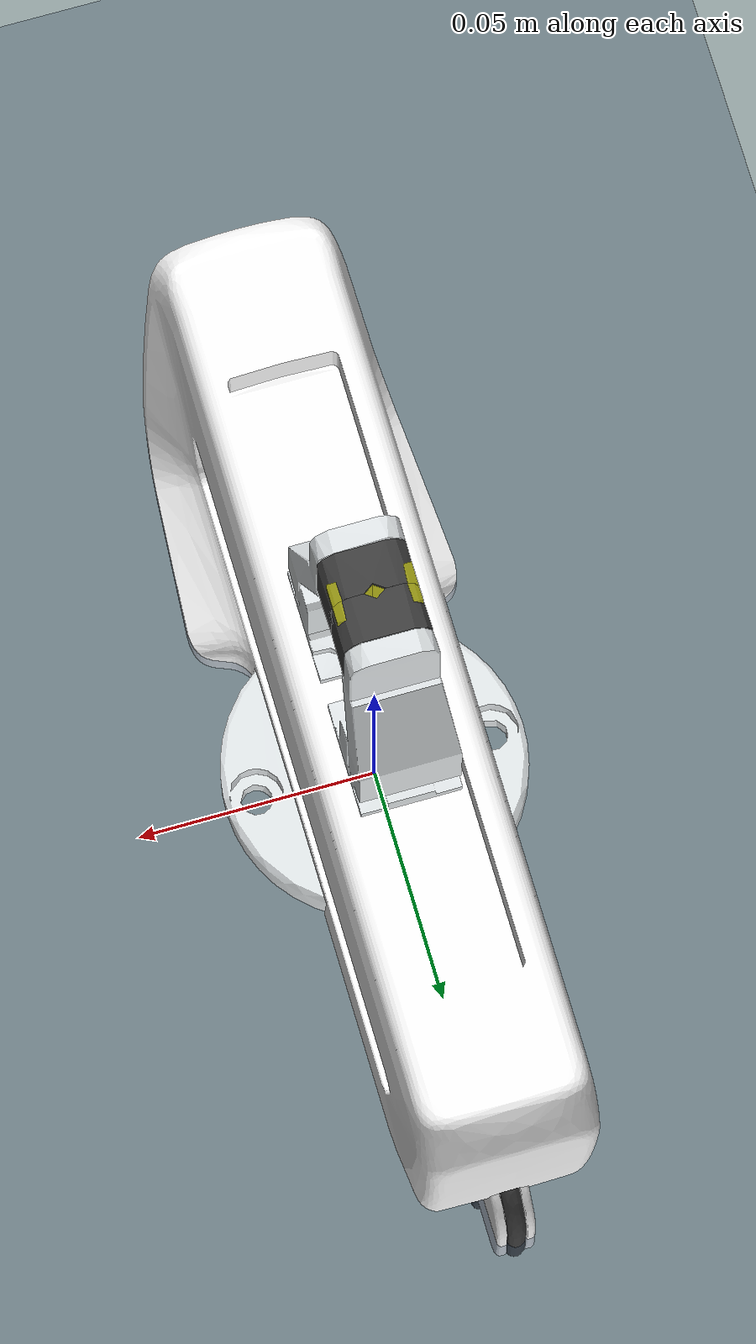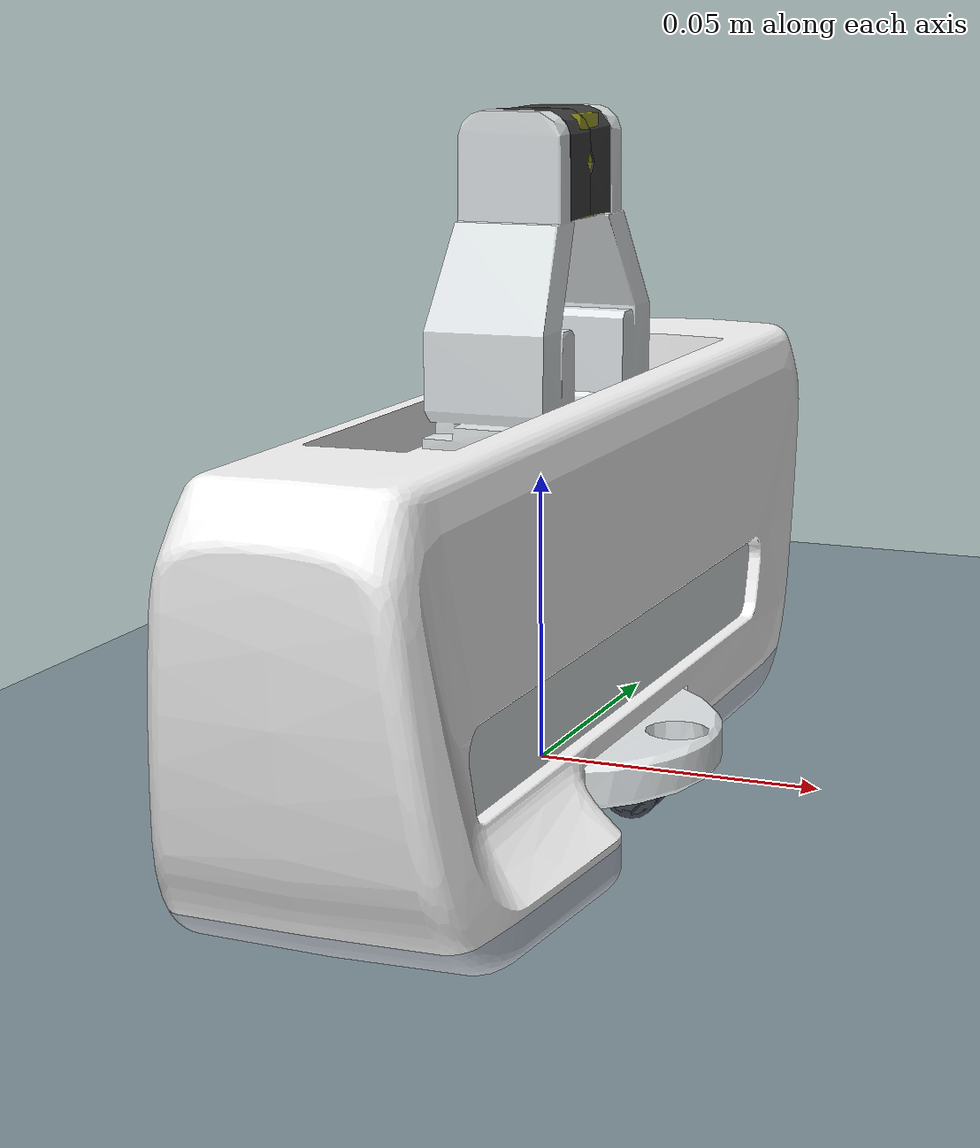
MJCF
<mujoco model="panda hand">
  <compiler angle="radian" meshdir="assets" autolimits="true"/>

  <option integrator="implicitfast"/>

  <visual>
    <headlight diffuse="0.6 0.6 0.6" ambient="0.3 0.3 0.3" specular="0 0 0" />
    <rgba haze="0.15 0.25 0.35 1" />
    <global azimuth="120" elevation="-20" offwidth="1920" offheight="1080" />
  </visual>

  <default>
    <default class="panda">
      <material specular="0.5" shininess="0.25"/>
      <joint armature="0.1" damping="1" axis="0 0 1" range="-2.8973 2.8973"/>
      <general dyntype="none" biastype="affine" ctrlrange="-2.8973 2.8973" forcerange="-87 87"/>
      <default class="finger">
        <joint axis="0 1 0" type="slide" range="0 0.04"/>
      </default>

      <default class="visual">
        <geom type="mesh" contype="0" conaffinity="0" group="2"/>
      </default>
      <default class="collision">
        <geom type="mesh" group="3"/>
        <default class="fingertip_pad_collision_1">
          <geom type="box" size="0.0085 0.004 0.0085" pos="0 0.0055 0.0445" group="5"/>
        </default>
        <default class="fingertip_pad_collision_2">
          <geom type="box" size="0.003 0.002 0.003" pos="0.0055 0.002 0.05"/>
        </default>
        <default class="fingertip_pad_collision_3">
          <geom type="box" size="0.003 0.002 0.003" pos="-0.0055 0.002 0.05"/>
        </default>
        <default class="fingertip_pad_collision_4">
          <geom type="box" size="0.003 0.002 0.0035" pos="0.0055 0.002 0.0395"/>
        </default>
        <default class="fingertip_pad_collision_5">
          <geom type="box" size="0.003 0.002 0.0035" pos="-0.0055 0.002 0.0395"/>
        </default>
      </default>

      <default class="canonical_fingertip_surafece_site">
        <site type="box" size="0.0085 0.004 0.0085" pos="0 0 0.0445" rgba="1 1 0 0.5"/>
      </default>
    </default>

  </default>

  <asset>
    <texture type="skybox" builtin="gradient" rgb1="0.3 0.5 0.7" rgb2="0 0 0" width="512" height="3072" />
    <texture type="2d" name="groundplane" builtin="checker" mark="edge" rgb1="0.2 0.3 0.4" rgb2="0.1 0.2 0.3" markrgb="0.8 0.8 0.8" width="300" height="300" />
    <material name="groundplane" texture="groundplane" texuniform="true" texrepeat="5 5" reflectance="0.2" />

    <material class="panda" name="white" rgba="1 1 1 1"/>
    <material class="panda" name="off_white" rgba="0.901961 0.921569 0.929412 1"/>
    <material class="panda" name="black" rgba="0.25 0.25 0.25 1"/>

    <!-- Collision meshes -->
    <mesh name="hand_c" file="hand.stl"/>

    <!-- Visual meshes -->
    <mesh file="hand_0.obj"/>
    <mesh file="hand_1.obj"/>
    <mesh file="hand_2.obj"/>
    <mesh file="hand_3.obj"/>
    <mesh file="hand_4.obj"/>
    <mesh file="finger_0.obj"/>
    <mesh file="finger_1.obj"/>
  </asset>

  <worldbody>
    <light pos="0 0 1.5" dir="0 0 -1" directional="true" />
    <body name="floor">
      <geom name="floor" size="0 0 0.05" type="plane" material="groundplane" />
    </body>

    <body name="hand" childclass="panda" quat="0 0 0 1">

      <body name="canonical_fingertip_surafece" pos="0 0 0.0584">
        <site class="canonical_fingertip_surafece_site" name="canonical_fingertip_surafece"/>
      </body>

      <inertial mass="0.73" pos="-0.01 0 0.03" diaginertia="0.001 0.0025 0.0017"/>
      <geom mesh="hand_0" material="off_white" class="visual"/>
      <geom mesh="hand_1" material="black" class="visual"/>
      <geom mesh="hand_2" material="black" class="visual"/>
      <geom mesh="hand_3" material="white" class="visual"/>
      <geom mesh="hand_4" material="off_white" class="visual"/>
      <geom mesh="hand_c" class="collision"/>
      <body name="left_finger" pos="0 0 0.0584">
        <inertial mass="0.015" pos="0 0 0" diaginertia="2.375e-6 2.375e-6 7.5e-7"/>
        <joint name="finger_joint1" class="finger"/>
        <geom mesh="finger_0" material="off_white" class="visual"/>
        <geom mesh="finger_1" material="black" class="visual"/>
        <geom mesh="finger_0" class="collision"/>
        <geom rgba="0 1 0 1" class="fingertip_pad_collision_1"/>
        <geom class="fingertip_pad_collision_2"/>
        <geom class="fingertip_pad_collision_3"/>
        <geom class="fingertip_pad_collision_4"/>
        <geom class="fingertip_pad_collision_5"/>
      </body>
      <body name="right_finger" pos="0 0 0.0584" quat="0 0 0 1">
        <inertial mass="0.015" pos="0 0 0" diaginertia="2.375e-6 2.375e-6 7.5e-7"/>
        <joint name="finger_joint2" class="finger"/>
        <geom mesh="finger_0" material="off_white" class="visual"/>
        <geom mesh="finger_1" material="black" class="visual"/>
        <geom mesh="finger_0" class="collision"/>
        <geom rgba="1 0 0 1" class="fingertip_pad_collision_1"/>
        <geom class="fingertip_pad_collision_2"/>
        <geom class="fingertip_pad_collision_3"/>
        <geom class="fingertip_pad_collision_4"/>
        <geom class="fingertip_pad_collision_5"/>
      </body>
    </body>
  </worldbody>

  <contact>
    <exclude body1="hand" body2="left_finger"/>
    <exclude body1="hand" body2="right_finger"/>
  </contact>

  <tendon>
    <fixed name="split">
      <joint joint="finger_joint1" coef="0.5"/>
      <joint joint="finger_joint2" coef="0.5"/>
    </fixed>
  </tendon>

  <equality>
    <joint joint1="finger_joint1" joint2="finger_joint2" solimp="0.95 0.99 0.001" solref="0.005 1"/>
  </equality>

  <actuator>
    <!-- Remap original ctrlrange (0, 0.04) to (0, 255): 0.04 * 100 / 255 = 0.01568627451 -->
    <general class="panda" name="actuator_finger" tendon="split" forcerange="-100 100" ctrlrange="0 0.04"
      gainprm="100 0 0" biasprm="0 -100 -10"/>
  </actuator>
</mujoco>
